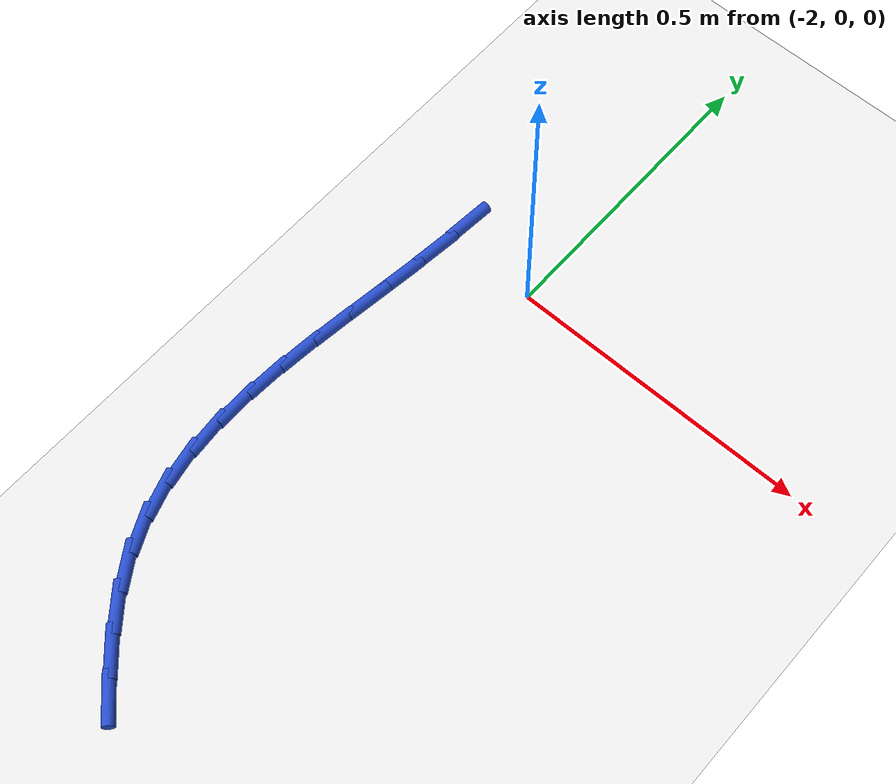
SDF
<sdf version="1.6">
 <world name="default">
  <model name="ground_plane">
   <static>1</static>
   <link name="link">
    <collision name="collision">
     <geometry><plane><normal>0 0 1</normal><size>100 100</size></plane></geometry>
     <surface><friction><ode><mu>100</mu><mu2>50</mu2></ode></friction></surface>
    </collision>
    <visual name="visual">
     <cast_shadows>0</cast_shadows>
     <geometry><plane><normal>0 0 1</normal><size>100 100</size></plane></geometry>
     <material>
      <script><uri>file://media/materials/scripts/gazebo.material</uri><name>Gazebo/WhiteGlow</name></script>
     </material>
    </visual>
   </link>
  </model>
  <model name="line">
   <link name="link_62">
    <pose>-2.153658203644822 0.03826513446638329 0.01 0 1.57 1.4874072738067703</pose>
    <collision name="collision">
     <geometry><cylinder><radius>0.01</radius><length>0.08</length></cylinder></geometry>
    </collision>
    <visual name="visual">
     <material>
      <script><name>Gazebo/Blue</name><uri>file://media/materials/scripts/gazebo.material</uri></script>
     </material>
     <geometry><cylinder><radius>0.01</radius><length>0.08</length></cylinder></geometry>
    </visual>
   </link>
   <link name="link_63">
    <pose>-2.159520534090577 -0.03187279815410218 0.01 0 1.57 1.4580452057821502</pose>
    <collision name="collision">
     <geometry><cylinder><radius>0.01</radius><length>0.08</length></cylinder></geometry>
    </collision>
    <visual name="visual">
     <material>
      <script><name>Gazebo/Blue</name><uri>file://media/materials/scripts/gazebo.material</uri></script>
     </material>
     <geometry><cylinder><radius>0.01</radius><length>0.08</length></cylinder></geometry>
    </visual>
   </link>
   <link name="link_64">
    <pose>-2.1673349137331464 -0.10088530302879718 0.01 0 1.57 1.4417272451512722</pose>
    <collision name="collision">
     <geometry><cylinder><radius>0.01</radius><length>0.08</length></cylinder></geometry>
    </collision>
    <visual name="visual">
     <material>
      <script><name>Gazebo/Blue</name><uri>file://media/materials/scripts/gazebo.material</uri></script>
     </material>
     <geometry><cylinder><radius>0.01</radius><length>0.08</length></cylinder></geometry>
    </visual>
   </link>
   <link name="link_65">
    <pose>-2.176133594713159 -0.16867665902237874 0.01 0 1.57 1.4389547787834047</pose>
    <collision name="collision">
     <geometry><cylinder><radius>0.01</radius><length>0.08</length></cylinder></geometry>
    </collision>
    <visual name="visual">
     <material>
      <script><name>Gazebo/Blue</name><uri>file://media/materials/scripts/gazebo.material</uri></script>
     </material>
     <geometry><cylinder><radius>0.01</radius><length>0.08</length></cylinder></geometry>
    </visual>
   </link>
   <link name="link_66">
    <pose>-2.1849488291712404 -0.235151144999524 0.01 0 1.57 1.450509705348928</pose>
    <collision name="collision">
     <geometry><cylinder><radius>0.01</radius><length>0.08</length></cylinder></geometry>
    </collision>
    <visual name="visual">
     <material>
      <script><name>Gazebo/Blue</name><uri>file://media/materials/scripts/gazebo.material</uri></script>
     </material>
     <geometry><cylinder><radius>0.01</radius><length>0.08</length></cylinder></geometry>
    </visual>
   </link>
   <link name="link_67">
    <pose>-2.1928128692480193 -0.3002130398249072 0.01 0 1.57 1.477523107268749</pose>
    <collision name="collision">
     <geometry><cylinder><radius>0.01</radius><length>0.08</length></cylinder></geometry>
    </collision>
    <visual name="visual">
     <material>
      <script><name>Gazebo/Blue</name><uri>file://media/materials/scripts/gazebo.material</uri></script>
     </material>
     <geometry><cylinder><radius>0.01</radius><length>0.08</length></cylinder></geometry>
    </visual>
   </link>
   <link name="link_68">
    <pose>-2.198757967084125 -0.36376662236320567 0.01 0 1.57 1.5214670479968984</pose>
    <collision name="collision">
     <geometry><cylinder><radius>0.01</radius><length>0.08</length></cylinder></geometry>
    </collision>
    <visual name="visual">
     <material>
      <script><name>Gazebo/Blue</name><uri>file://media/materials/scripts/gazebo.material</uri></script>
     </material>
     <geometry><cylinder><radius>0.01</radius><length>0.08</length></cylinder></geometry>
    </visual>
   </link>
   <link name="link_69">
    <pose>-2.201816374820182 -0.42571617147909524 0.01 0 1.57 -1.5575849305509923</pose>
    <collision name="collision">
     <geometry><cylinder><radius>0.01</radius><length>0.08</length></cylinder></geometry>
    </collision>
    <visual name="visual">
     <material>
      <script><name>Gazebo/Blue</name><uri>file://media/materials/scripts/gazebo.material</uri></script>
     </material>
     <geometry><cylinder><radius>0.01</radius><length>0.08</length></cylinder></geometry>
    </visual>
   </link>
   <link name="link_70">
    <pose>-2.20102034459682 -0.4859659660372529 0.01 0 1.57 -1.4749777180356392</pose>
    <collision name="collision">
     <geometry><cylinder><radius>0.01</radius><length>0.08</length></cylinder></geometry>
    </collision>
    <visual name="visual">
     <material>
      <script><name>Gazebo/Blue</name><uri>file://media/materials/scripts/gazebo.material</uri></script>
     </material>
     <geometry><cylinder><radius>0.01</radius><length>0.08</length></cylinder></geometry>
    </visual>
   </link>
   <link name="link_71">
    <pose>-2.1954021285546674 -0.5444202849023534 0.01 0 1.57 -1.3717774237266915</pose>
    <collision name="collision">
     <geometry><cylinder><radius>0.01</radius><length>0.08</length></cylinder></geometry>
    </collision>
    <visual name="visual">
     <material>
      <script><name>Gazebo/Blue</name><uri>file://media/materials/scripts/gazebo.material</uri></script>
     </material>
     <geometry><cylinder><radius>0.01</radius><length>0.08</length></cylinder></geometry>
    </visual>
   </link>
   <link name="link_72">
    <pose>-2.1839939788343505 -0.6009834069390738 0.01 0 1.57 -1.249478497516412</pose>
    <collision name="collision">
     <geometry><cylinder><radius>0.01</radius><length>0.08</length></cylinder></geometry>
    </collision>
    <visual name="visual">
     <material>
      <script><name>Gazebo/Blue</name><uri>file://media/materials/scripts/gazebo.material</uri></script>
     </material>
     <geometry><cylinder><radius>0.01</radius><length>0.08</length></cylinder></geometry>
    </visual>
   </link>
   <link name="link_73">
    <pose>-2.165828147576498 -0.65555961101209 0.01 0 1.57 -1.1125845102660337</pose>
    <collision name="collision">
     <geometry><cylinder><radius>0.01</radius><length>0.08</length></cylinder></geometry>
    </collision>
    <visual name="visual">
     <material>
      <script><name>Gazebo/Blue</name><uri>file://media/materials/scripts/gazebo.material</uri></script>
     </material>
     <geometry><cylinder><radius>0.01</radius><length>0.08</length></cylinder></geometry>
    </visual>
   </link>
   <link name="link_74">
    <pose>-2.139937065618789 -0.7080532090935858 0.01 0 1.57 -0.9776809994682091</pose>
    <collision name="collision">
     <geometry><cylinder><radius>0.01</radius><length>0.08</length></cylinder></geometry>
    </collision>
    <visual name="visual">
     <material>
      <script><name>Gazebo/Blue</name><uri>file://media/materials/scripts/gazebo.material</uri></script>
     </material>
     <geometry><cylinder><radius>0.01</radius><length>0.08</length></cylinder></geometry>
    </visual>
   </link>
   <link name="link_75">
    <pose>-2.1059465661716925 -0.758478453823882 0.01 0 1.57 -0.8767446835213556</pose>
    <collision name="collision">
     <geometry><cylinder><radius>0.01</radius><length>0.08</length></cylinder></geometry>
    </collision>
    <visual name="visual">
     <material>
      <script><name>Gazebo/Blue</name><uri>file://media/materials/scripts/gazebo.material</uri></script>
     </material>
     <geometry><cylinder><radius>0.01</radius><length>0.08</length></cylinder></geometry>
    </visual>
   </link>
   <link name="link_76">
    <pose>-2.0653981691856993 -0.8072045203879338 0.01 0 1.57 -0.8100959735689109</pose>
    <collision name="collision">
     <geometry><cylinder><radius>0.01</radius><length>0.08</length></cylinder></geometry>
    </collision>
    <visual name="visual">
     <material>
      <script><name>Gazebo/Blue</name><uri>file://media/materials/scripts/gazebo.material</uri></script>
     </material>
     <geometry><cylinder><radius>0.01</radius><length>0.08</length></cylinder></geometry>
    </visual>
   </link>
   <link name="link_77">
    <pose>-2.0202192481981602 -0.854672071721821 0.01 0 1.57 -0.7722610565025495</pose>
    <collision name="collision">
     <geometry><cylinder><radius>0.01</radius><length>0.08</length></cylinder></geometry>
    </collision>
    <visual name="visual">
     <material>
      <script><name>Gazebo/Blue</name><uri>file://media/materials/scripts/gazebo.material</uri></script>
     </material>
     <geometry><cylinder><radius>0.01</radius><length>0.08</length></cylinder></geometry>
    </visual>
   </link>
  </model>
 </world>
</sdf>
